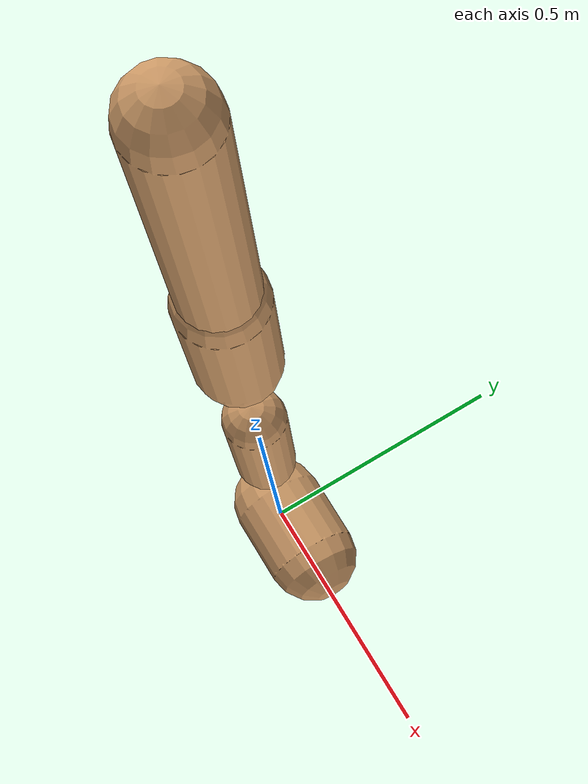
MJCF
<mujoco model="walker2d">
  <compiler angle="degree" coordinate="global" inertiafromgeom="true" />
  <default>
    <joint armature="0.01" damping=".1" limited="true" />
    <geom conaffinity="0" condim="3" contype="1" density="1000" friction="0.8 .1 .1" rgba="0.8 0.6 .4 1" />
  </default>
  <option integrator="RK4" timestep="0.002" />
  <worldbody>

    <body name="torso" pos="0 0 -0.5239938379586547">
      <joint armature="0" axis="1 0 0" damping="0" limited="false" name="ignorex" pos="0 0 0" stiffness="0" type="slide" />
      <joint armature="0" axis="0 0 1" damping="0" limited="false" name="ignorez" pos="0 0 0" ref="1.25" stiffness="0" type="slide" />
      <joint armature="0" axis="0 1 0" damping="0" limited="false" name="ignorey" pos="0 0 0" stiffness="0" type="hinge" />
      <geom fromto="0 0 1.45 0 0 1.05" name="torso_geom" size="0.05804459897465419" type="capsule" />
      <body name="thigh">
        <joint axis="0 -1 0" name="thigh_joint" pos="0 0 1.05" range="-150 0" type="hinge" />
        <geom fromto="0.0 0.0 1.05 0.0 0.0 0.8482076074540996" name="thigh_geom" size="0.06756945320921075" type="capsule" />
        <body name="leg" pos="0.0 0.0 0.24820760745409964">
          <joint axis="0 -1 0" name="leg_joint" pos="0 0 0.6" range="-150 0" type="hinge" />
          <geom fromto="0.0 0.0 0.6 0.0 0.0 0.37578623050455506" name="leg_geom" size="0.0540555625673686" type="capsule" />
          <body name="foot" pos="0.0 0.0 0.2757862305045551">
            <joint axis="0 -1 0" name="foot_joint" pos="0 0 0.1" range="-45 45" type="hinge" />
            <geom fromto="0.0 0.0 0.1 0.13630307239647146 0.0 0.1" name="foot_geom" size="0.08845160763030697" type="capsule" />
          </body>
        </body>
      </body>

      <body name="thigh_left">
        <joint axis="0 -1 0" name="thigh_left_joint" pos="0 0 1.05" range="-150 0" type="hinge" />
        <geom fromto="0.0 0.0 1.05 0.0 0.0 0.8482076074540996" name="thigh_left_geom" rgba=".7 .3 .6 1" size="0.06756945320921075" type="capsule" />
        <body name="leg_left" pos="0.0 0.0 0.24820760745409964">
          <joint axis="0 -1 0" name="leg_left_joint" pos="0 0 0.6" range="-150 0" type="hinge" />
          <geom fromto="0.0 0.0 0.6 0.0 0.0 0.37578623050455506" name="leg_left_geom" rgba=".7 .3 .6 1" size="0.0540555625673686" type="capsule" />
          <body name="foot_left" pos="0.0 0.0 0.2757862305045551">
            <joint axis="0 -1 0" name="foot_left_joint" pos="0 0 0.1" range="-45 45" type="hinge" />
            <geom fromto="0.0 0.0 0.1 0.13630307239647146 0.0 0.1" name="foot_left_geom" rgba=".7 .3 .6 1" size="0.08845160763030697" type="capsule" />
          </body>
        </body>
      </body>
    </body>
  </worldbody>
  <actuator>

    <motor ctrllimited="true" ctrlrange="-1.0 1.0" gear="100" joint="thigh_joint" />
    <motor ctrllimited="true" ctrlrange="-1.0 1.0" gear="100" joint="leg_joint" />
    <motor ctrllimited="true" ctrlrange="-1.0 1.0" gear="100" joint="foot_joint" />
    <motor ctrllimited="true" ctrlrange="-1.0 1.0" gear="100" joint="thigh_left_joint" />
    <motor ctrllimited="true" ctrlrange="-1.0 1.0" gear="100" joint="leg_left_joint" />
    <motor ctrllimited="true" ctrlrange="-1.0 1.0" gear="100" joint="foot_left_joint" />

  </actuator>
</mujoco>
